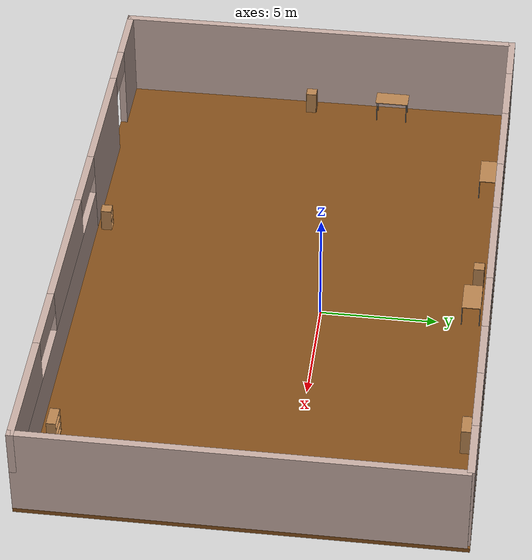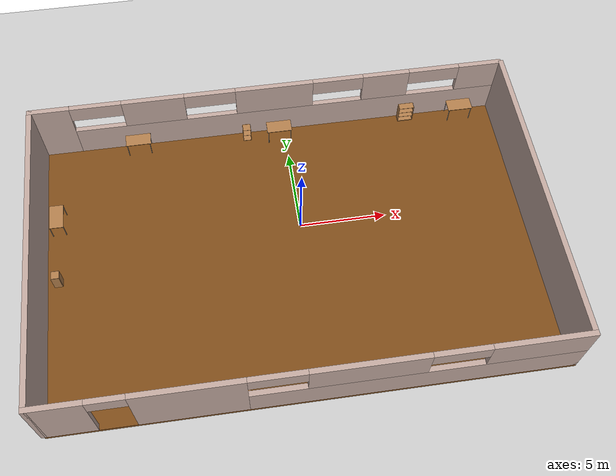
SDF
<sdf version="1.7">
 <world name="default">
  <light name="sun" type="directional">
   <pose>0 0 10 0 -0 0</pose>
   <diffuse>0.8 0.8 0.8 1</diffuse>
   <specular>0.2 0.2 0.2 1</specular>
   <attenuation>
    <range>1000</range>
    <constant>0.9</constant>
    <linear>0.01</linear>
    <quadratic>0.001</quadratic>
   </attenuation>
   <direction>-0.5 0.1 -0.9</direction>
   <spot><inner_angle>0</inner_angle><outer_angle>0</outer_angle><falloff>0</falloff></spot>
  </light>
  <model name="ground_plane">
   <static>1</static>
   <link name="link">
    <collision name="collision">
     <geometry><plane><normal>0 0 1</normal><size>100 100</size></plane></geometry>
     <surface>
      <contact><collide_bitmask>65535</collide_bitmask></contact>
      <friction><ode><mu>100</mu><mu2>50</mu2></ode></friction>
     </surface>
    </collision>
    <visual name="visual">
     <cast_shadows>0</cast_shadows>
     <geometry><plane><normal>0 0 1</normal><size>100 100</size></plane></geometry>
     <material>
      <script><uri>file://media/materials/scripts/gazebo.material</uri><name>Gazebo/Grey</name></script>
     </material>
    </visual>
   </link>
  </model>
  <gravity>0 0 -9.8</gravity>
  <magnetic_field>6e-06 2.3e-05 -4.2e-05</magnetic_field>
  <atmosphere type="adiabatic"/>
  <physics type="ode">
   <max_step_size>0.001</max_step_size>
   <real_time_factor>1</real_time_factor>
   <real_time_update_rate>1000</real_time_update_rate>
  </physics>
  <scene><ambient>0.4 0.4 0.4 1</ambient><background>0.7 0.7 0.7 1</background><shadows>1</shadows></scene>
  <spherical_coordinates>
   <surface_model>EARTH_WGS84</surface_model>
   <latitude_deg>0</latitude_deg>
   <longitude_deg>0</longitude_deg>
   <elevation>0</elevation>
   <heading_deg>0</heading_deg>
  </spherical_coordinates>
  <model name="warehouse_v2">
   <pose>-0.835617 -1.69657 0.21 0 -0 0</pose>
   <link name="Wall_0">
    <pose>-0.075 8.85 0 0 -0 0</pose>
    <visual name="Wall_0_Visual_0">
     <pose>-12.7935 0 2 0 -0 0</pose>
     <geometry><box><size>2.41307 0.3 4</size></box></geometry>
     <material>
      <script><uri>file://media/materials/scripts/gazebo.material</uri><name>Gazebo/Grey</name></script>
      <ambient>0.760784 0.662745 0.627451 1</ambient>
     </material>
     <meta><layer>0</layer></meta>
    </visual>
    <collision name="Wall_0_Collision_0">
     <geometry><box><size>2.41307 0.3 4</size></box></geometry>
     <pose>-12.7935 0 2 0 -0 0</pose>
    </collision>
    <visual name="Wall_0_Visual_1">
     <pose>1.20654 0 1 0 -0 0</pose>
     <geometry><box><size>25.5869 0.3 2</size></box></geometry>
     <material>
      <script><uri>file://media/materials/scripts/gazebo.material</uri><name>Gazebo/Grey</name></script>
      <ambient>0.760784 0.662745 0.627451 1</ambient>
     </material>
     <meta><layer>0</layer></meta>
    </visual>
    <collision name="Wall_0_Collision_1">
     <geometry><box><size>25.5869 0.3 2</size></box></geometry>
     <pose>1.20654 0 1 0 -0 0</pose>
    </collision>
    <visual name="Wall_0_Visual_2">
     <pose>-6.76977 0 3 0 -0 0</pose>
     <geometry><box><size>3.63431 0.3 2</size></box></geometry>
     <material>
      <script><uri>file://media/materials/scripts/gazebo.material</uri><name>Gazebo/Grey</name></script>
      <ambient>0.760784 0.662745 0.627451 1</ambient>
     </material>
     <meta><layer>0</layer></meta>
    </visual>
    <collision name="Wall_0_Collision_2">
     <geometry><box><size>3.63431 0.3 2</size></box></geometry>
     <pose>-6.76977 0 3 0 -0 0</pose>
    </collision>
    <visual name="Wall_0_Visual_3">
     <pose>0.34606 0 3 0 -0 0</pose>
     <geometry><box><size>4.59736 0.3 2</size></box></geometry>
     <material>
      <script><uri>file://media/materials/scripts/gazebo.material</uri><name>Gazebo/Grey</name></script>
      <ambient>0.760784 0.662745 0.627451 1</ambient>
     </material>
     <meta><layer>0</layer></meta>
    </visual>
    <collision name="Wall_0_Collision_3">
     <geometry><box><size>4.59736 0.3 2</size></box></geometry>
     <pose>0.34606 0 3 0 -0 0</pose>
    </collision>
    <visual name="Wall_0_Visual_4">
     <pose>7.03387 0 3 0 -0 0</pose>
     <geometry><box><size>2.77827 0.3 2</size></box></geometry>
     <material>
      <script><uri>file://media/materials/scripts/gazebo.material</uri><name>Gazebo/Grey</name></script>
      <ambient>0.760784 0.662745 0.627451 1</ambient>
     </material>
     <meta><layer>0</layer></meta>
    </visual>
    <collision name="Wall_0_Collision_4">
     <geometry><box><size>2.77827 0.3 2</size></box></geometry>
     <pose>7.03387 0 3 0 -0 0</pose>
    </collision>
    <visual name="Wall_0_Visual_5">
     <pose>12.7115 0 3 0 -0 0</pose>
     <geometry><box><size>2.57699 0.3 2</size></box></geometry>
     <material>
      <script><uri>file://media/materials/scripts/gazebo.material</uri><name>Gazebo/Grey</name></script>
      <ambient>0.760784 0.662745 0.627451 1</ambient>
     </material>
     <meta><layer>0</layer></meta>
    </visual>
    <collision name="Wall_0_Collision_5">
     <geometry><box><size>2.57699 0.3 2</size></box></geometry>
     <pose>12.7115 0 3 0 -0 0</pose>
    </collision>
    <visual name="Wall_0_Visual_6">
     <pose>-10.0869 0 3.5 0 -0 0</pose>
     <geometry><box><size>3 0.3 1</size></box></geometry>
     <material>
      <script><uri>file://media/materials/scripts/gazebo.material</uri><name>Gazebo/Grey</name></script>
      <ambient>0.760784 0.662745 0.627451 1</ambient>
     </material>
     <meta><layer>0</layer></meta>
    </visual>
    <collision name="Wall_0_Collision_6">
     <geometry><box><size>3 0.3 1</size></box></geometry>
     <pose>-10.0869 0 3.5 0 -0 0</pose>
    </collision>
    <visual name="Wall_0_Visual_7">
     <pose>-3.45262 0 3.5 0 -0 0</pose>
     <geometry><box><size>3 0.3 1</size></box></geometry>
     <material>
      <script><uri>file://media/materials/scripts/gazebo.material</uri><name>Gazebo/Grey</name></script>
      <ambient>0.760784 0.662745 0.627451 1</ambient>
     </material>
     <meta><layer>0</layer></meta>
    </visual>
    <collision name="Wall_0_Collision_7">
     <geometry><box><size>3 0.3 1</size></box></geometry>
     <pose>-3.45262 0 3.5 0 -0 0</pose>
    </collision>
    <visual name="Wall_0_Visual_8">
     <pose>4.14474 0 3.5 0 -0 0</pose>
     <geometry><box><size>3 0.3 1</size></box></geometry>
     <material>
      <script><uri>file://media/materials/scripts/gazebo.material</uri><name>Gazebo/Grey</name></script>
      <ambient>0.760784 0.662745 0.627451 1</ambient>
     </material>
     <meta><layer>0</layer></meta>
    </visual>
    <collision name="Wall_0_Collision_8">
     <geometry><box><size>3 0.3 1</size></box></geometry>
     <pose>4.14474 0 3.5 0 -0 0</pose>
    </collision>
    <visual name="Wall_0_Visual_9">
     <pose>9.92301 0 3.5 0 -0 0</pose>
     <geometry><box><size>3 0.3 1</size></box></geometry>
     <material>
      <script><uri>file://media/materials/scripts/gazebo.material</uri><name>Gazebo/Grey</name></script>
      <ambient>0.760784 0.662745 0.627451 1</ambient>
     </material>
     <meta><layer>0</layer></meta>
    </visual>
    <collision name="Wall_0_Collision_9">
     <geometry><box><size>3 0.3 1</size></box></geometry>
     <pose>9.92301 0 3.5 0 -0 0</pose>
    </collision>
   </link>
   <link name="Wall_4">
    <collision name="Wall_4_Collision">
     <geometry><box><size>18 0.3 4</size></box></geometry>
     <pose>0 0 2 0 -0 0</pose>
    </collision>
    <visual name="Wall_4_Visual">
     <pose>0 0 2 0 -0 0</pose>
     <geometry><box><size>18 0.3 4</size></box></geometry>
     <material>
      <script><uri>file://media/materials/scripts/gazebo.material</uri><name>Gazebo/Grey</name></script>
      <ambient>0.760784 0.662745 0.627451 1</ambient>
     </material>
     <meta><layer>0</layer></meta>
    </visual>
    <pose>-13.925 0 0 0 -0 -1.5708</pose>
   </link>
   <link name="Wall_6">
    <pose>0 -8.85 0 0 -0 0</pose>
    <visual name="Wall_6_Visual_0">
     <pose>-12.6069 0 2 0 -0 0</pose>
     <geometry><box><size>2.9362 0.3 4</size></box></geometry>
     <material>
      <script><uri>file://media/materials/scripts/gazebo.material</uri><name>Gazebo/Grey</name></script>
      <ambient>0.760784 0.662745 0.627451 1</ambient>
     </material>
     <meta><layer>0</layer></meta>
    </visual>
    <collision name="Wall_6_Collision_0">
     <geometry><box><size>2.9362 0.3 4</size></box></geometry>
     <pose>-12.6069 0 2 0 -0 0</pose>
    </collision>
    <visual name="Wall_6_Visual_1">
     <pose>-6.25392 0 2 0 -0 0</pose>
     <geometry><box><size>5.76976 0.3 4</size></box></geometry>
     <material>
      <script><uri>file://media/materials/scripts/gazebo.material</uri><name>Gazebo/Grey</name></script>
      <ambient>0.760784 0.662745 0.627451 1</ambient>
     </material>
     <meta><layer>0</layer></meta>
    </visual>
    <collision name="Wall_6_Collision_1">
     <geometry><box><size>5.76976 0.3 4</size></box></geometry>
     <pose>-6.25392 0 2 0 -0 0</pose>
    </collision>
    <visual name="Wall_6_Visual_2">
     <pose>5.35298 0 1 0 -0 0</pose>
     <geometry><box><size>17.444 0.3 2</size></box></geometry>
     <material>
      <script><uri>file://media/materials/scripts/gazebo.material</uri><name>Gazebo/Grey</name></script>
      <ambient>0.760784 0.662745 0.627451 1</ambient>
     </material>
     <meta><layer>0</layer></meta>
    </visual>
    <collision name="Wall_6_Collision_2">
     <geometry><box><size>17.444 0.3 2</size></box></geometry>
     <pose>5.35298 0 1 0 -0 0</pose>
    </collision>
    <visual name="Wall_6_Visual_3">
     <pose>2.69024 0 3 0 -0 0</pose>
     <geometry><box><size>6.11855 0.3 2</size></box></geometry>
     <material>
      <script><uri>file://media/materials/scripts/gazebo.material</uri><name>Gazebo/Grey</name></script>
      <ambient>0.760784 0.662745 0.627451 1</ambient>
     </material>
     <meta><layer>0</layer></meta>
    </visual>
    <collision name="Wall_6_Collision_3">
     <geometry><box><size>6.11855 0.3 2</size></box></geometry>
     <pose>2.69024 0 3 0 -0 0</pose>
    </collision>
    <visual name="Wall_6_Visual_4">
     <pose>11.4123 0 3 0 -0 0</pose>
     <geometry><box><size>5.32548 0.3 2</size></box></geometry>
     <material>
      <script><uri>file://media/materials/scripts/gazebo.material</uri><name>Gazebo/Grey</name></script>
      <ambient>0.760784 0.662745 0.627451 1</ambient>
     </material>
     <meta><layer>0</layer></meta>
    </visual>
    <collision name="Wall_6_Collision_4">
     <geometry><box><size>5.32548 0.3 2</size></box></geometry>
     <pose>11.4123 0 3 0 -0 0</pose>
    </collision>
    <visual name="Wall_6_Visual_5">
     <pose>-10.1388 0 3.5 0 -0 0</pose>
     <geometry><box><size>2 0.3 1</size></box></geometry>
     <material>
      <script><uri>file://media/materials/scripts/gazebo.material</uri><name>Gazebo/Grey</name></script>
      <ambient>0.760784 0.662745 0.627451 1</ambient>
     </material>
     <meta><layer>0</layer></meta>
    </visual>
    <collision name="Wall_6_Collision_5">
     <geometry><box><size>2 0.3 1</size></box></geometry>
     <pose>-10.1388 0 3.5 0 -0 0</pose>
    </collision>
    <visual name="Wall_6_Visual_6">
     <pose>-1.86904 0 3.5 0 -0 0</pose>
     <geometry><box><size>3 0.3 1</size></box></geometry>
     <material>
      <script><uri>file://media/materials/scripts/gazebo.material</uri><name>Gazebo/Grey</name></script>
      <ambient>0.760784 0.662745 0.627451 1</ambient>
     </material>
     <meta><layer>0</layer></meta>
    </visual>
    <collision name="Wall_6_Collision_6">
     <geometry><box><size>3 0.3 1</size></box></geometry>
     <pose>-1.86904 0 3.5 0 -0 0</pose>
    </collision>
    <visual name="Wall_6_Visual_7">
     <pose>7.24951 0 3.5 0 -0 0</pose>
     <geometry><box><size>3 0.3 1</size></box></geometry>
     <material>
      <script><uri>file://media/materials/scripts/gazebo.material</uri><name>Gazebo/Grey</name></script>
      <ambient>0.760784 0.662745 0.627451 1</ambient>
     </material>
     <meta><layer>0</layer></meta>
    </visual>
    <collision name="Wall_6_Collision_7">
     <geometry><box><size>3 0.3 1</size></box></geometry>
     <pose>7.24951 0 3.5 0 -0 0</pose>
    </collision>
   </link>
   <link name="Wall_8">
    <collision name="Wall_8_Collision">
     <geometry><box><size>17.9 0.3 4</size></box></geometry>
     <pose>0 0 2 0 -0 0</pose>
    </collision>
    <visual name="Wall_8_Visual">
     <pose>0 0 2 0 -0 0</pose>
     <geometry><box><size>17.9 0.3 4</size></box></geometry>
     <material>
      <script><uri>file://media/materials/scripts/gazebo.material</uri><name>Gazebo/Grey</name></script>
      <ambient>0.760784 0.662745 0.627451 1</ambient>
     </material>
     <meta><layer>0</layer></meta>
    </visual>
    <pose>13.925 -0.05 0 0 -0 1.5708</pose>
   </link>
   <static>1</static>
  </model>
  <model name="table">
   <static>1</static>
   <link name="link">
    <collision name="surface">
     <pose>0 0 1 0 -0 0</pose>
     <geometry><box><size>1.5 0.8 0.03</size></box></geometry>
     <surface><friction><ode><mu>0.6</mu><mu2>0.6</mu2></ode></friction></surface>
    </collision>
    <visual name="visual1">
     <pose>0 0 1 0 -0 0</pose>
     <geometry><box><size>1.5 0.8 0.03</size></box></geometry>
     <material>
      <script><uri>file://media/materials/scripts/gazebo.material</uri><name>Gazebo/Wood</name></script>
     </material>
    </visual>
    <collision name="front_left_leg">
     <pose>0.68 0.38 0.5 0 -0 0</pose>
     <geometry><cylinder><radius>0.02</radius><length>1</length></cylinder></geometry>
    </collision>
    <visual name="front_left_leg">
     <pose>0.68 0.38 0.5 0 -0 0</pose>
     <geometry><cylinder><radius>0.02</radius><length>1</length></cylinder></geometry>
     <material>
      <script><uri>file://media/materials/scripts/gazebo.material</uri><name>Gazebo/Grey</name></script>
     </material>
    </visual>
    <collision name="front_right_leg">
     <pose>0.68 -0.38 0.5 0 -0 0</pose>
     <geometry><cylinder><radius>0.02</radius><length>1</length></cylinder></geometry>
    </collision>
    <visual name="front_right_leg">
     <pose>0.68 -0.38 0.5 0 -0 0</pose>
     <geometry><cylinder><radius>0.02</radius><length>1</length></cylinder></geometry>
     <material>
      <script><uri>file://media/materials/scripts/gazebo.material</uri><name>Gazebo/Grey</name></script>
     </material>
    </visual>
    <collision name="back_right_leg">
     <pose>-0.68 -0.38 0.5 0 -0 0</pose>
     <geometry><cylinder><radius>0.02</radius><length>1</length></cylinder></geometry>
    </collision>
    <visual name="back_right_leg">
     <pose>-0.68 -0.38 0.5 0 -0 0</pose>
     <geometry><cylinder><radius>0.02</radius><length>1</length></cylinder></geometry>
     <material>
      <script><uri>file://media/materials/scripts/gazebo.material</uri><name>Gazebo/Grey</name></script>
     </material>
    </visual>
    <collision name="back_left_leg">
     <pose>-0.68 0.38 0.5 0 -0 0</pose>
     <geometry><cylinder><radius>0.02</radius><length>1</length></cylinder></geometry>
    </collision>
    <visual name="back_left_leg">
     <pose>-0.68 0.38 0.5 0 -0 0</pose>
     <geometry><cylinder><radius>0.02</radius><length>1</length></cylinder></geometry>
     <material>
      <script><uri>file://media/materials/scripts/gazebo.material</uri><name>Gazebo/Grey</name></script>
     </material>
    </visual>
   </link>
   <pose>10.9163 6.54657 0.240059 0 -0 0</pose>
  </model>
  <model name="table_0">
   <static>1</static>
   <link name="link">
    <collision name="surface">
     <pose>0 0 1 0 -0 0</pose>
     <geometry><box><size>1.5 0.8 0.03</size></box></geometry>
     <surface><friction><ode><mu>0.6</mu><mu2>0.6</mu2></ode></friction></surface>
    </collision>
    <visual name="visual1">
     <pose>0 0 1 0 -0 0</pose>
     <geometry><box><size>1.5 0.8 0.03</size></box></geometry>
     <material>
      <script><uri>file://media/materials/scripts/gazebo.material</uri><name>Gazebo/Wood</name></script>
     </material>
    </visual>
    <collision name="front_left_leg">
     <pose>0.68 0.38 0.5 0 -0 0</pose>
     <geometry><cylinder><radius>0.02</radius><length>1</length></cylinder></geometry>
    </collision>
    <visual name="front_left_leg">
     <pose>0.68 0.38 0.5 0 -0 0</pose>
     <geometry><cylinder><radius>0.02</radius><length>1</length></cylinder></geometry>
     <material>
      <script><uri>file://media/materials/scripts/gazebo.material</uri><name>Gazebo/Grey</name></script>
     </material>
    </visual>
    <collision name="front_right_leg">
     <pose>0.68 -0.38 0.5 0 -0 0</pose>
     <geometry><cylinder><radius>0.02</radius><length>1</length></cylinder></geometry>
    </collision>
    <visual name="front_right_leg">
     <pose>0.68 -0.38 0.5 0 -0 0</pose>
     <geometry><cylinder><radius>0.02</radius><length>1</length></cylinder></geometry>
     <material>
      <script><uri>file://media/materials/scripts/gazebo.material</uri><name>Gazebo/Grey</name></script>
     </material>
    </visual>
    <collision name="back_right_leg">
     <pose>-0.68 -0.38 0.5 0 -0 0</pose>
     <geometry><cylinder><radius>0.02</radius><length>1</length></cylinder></geometry>
    </collision>
    <visual name="back_right_leg">
     <pose>-0.68 -0.38 0.5 0 -0 0</pose>
     <geometry><cylinder><radius>0.02</radius><length>1</length></cylinder></geometry>
     <material>
      <script><uri>file://media/materials/scripts/gazebo.material</uri><name>Gazebo/Grey</name></script>
     </material>
    </visual>
    <collision name="back_left_leg">
     <pose>-0.68 0.38 0.5 0 -0 0</pose>
     <geometry><cylinder><radius>0.02</radius><length>1</length></cylinder></geometry>
    </collision>
    <visual name="back_left_leg">
     <pose>-0.68 0.38 0.5 0 -0 0</pose>
     <geometry><cylinder><radius>0.02</radius><length>1</length></cylinder></geometry>
     <material>
      <script><uri>file://media/materials/scripts/gazebo.material</uri><name>Gazebo/Grey</name></script>
     </material>
    </visual>
   </link>
   <pose>-0.401974 6.43963 0.229068 0 -0 0</pose>
  </model>
  <model name="table_1">
   <static>1</static>
   <link name="link">
    <collision name="surface">
     <pose>0 0 1 0 -0 0</pose>
     <geometry><box><size>1.5 0.8 0.03</size></box></geometry>
     <surface><friction><ode><mu>0.6</mu><mu2>0.6</mu2></ode></friction></surface>
    </collision>
    <visual name="visual1">
     <pose>0 0 1 0 -0 0</pose>
     <geometry><box><size>1.5 0.8 0.03</size></box></geometry>
     <material>
      <script><uri>file://media/materials/scripts/gazebo.material</uri><name>Gazebo/Wood</name></script>
     </material>
    </visual>
    <collision name="front_left_leg">
     <pose>0.68 0.38 0.5 0 -0 0</pose>
     <geometry><cylinder><radius>0.02</radius><length>1</length></cylinder></geometry>
    </collision>
    <visual name="front_left_leg">
     <pose>0.68 0.38 0.5 0 -0 0</pose>
     <geometry><cylinder><radius>0.02</radius><length>1</length></cylinder></geometry>
     <material>
      <script><uri>file://media/materials/scripts/gazebo.material</uri><name>Gazebo/Grey</name></script>
     </material>
    </visual>
    <collision name="front_right_leg">
     <pose>0.68 -0.38 0.5 0 -0 0</pose>
     <geometry><cylinder><radius>0.02</radius><length>1</length></cylinder></geometry>
    </collision>
    <visual name="front_right_leg">
     <pose>0.68 -0.38 0.5 0 -0 0</pose>
     <geometry><cylinder><radius>0.02</radius><length>1</length></cylinder></geometry>
     <material>
      <script><uri>file://media/materials/scripts/gazebo.material</uri><name>Gazebo/Grey</name></script>
     </material>
    </visual>
    <collision name="back_right_leg">
     <pose>-0.68 -0.38 0.5 0 -0 0</pose>
     <geometry><cylinder><radius>0.02</radius><length>1</length></cylinder></geometry>
    </collision>
    <visual name="back_right_leg">
     <pose>-0.68 -0.38 0.5 0 -0 0</pose>
     <geometry><cylinder><radius>0.02</radius><length>1</length></cylinder></geometry>
     <material>
      <script><uri>file://media/materials/scripts/gazebo.material</uri><name>Gazebo/Grey</name></script>
     </material>
    </visual>
    <collision name="back_left_leg">
     <pose>-0.68 0.38 0.5 0 -0 0</pose>
     <geometry><cylinder><radius>0.02</radius><length>1</length></cylinder></geometry>
    </collision>
    <visual name="back_left_leg">
     <pose>-0.68 0.38 0.5 0 -0 0</pose>
     <geometry><cylinder><radius>0.02</radius><length>1</length></cylinder></geometry>
     <material>
      <script><uri>file://media/materials/scripts/gazebo.material</uri><name>Gazebo/Grey</name></script>
     </material>
    </visual>
   </link>
   <pose>-8.98707 6.61932 0.248796 0 -0 0</pose>
  </model>
  <model name="table_2">
   <static>1</static>
   <link name="link">
    <collision name="surface">
     <pose>0 0 1 0 -0 0</pose>
     <geometry><box><size>1.5 0.8 0.03</size></box></geometry>
     <surface><friction><ode><mu>0.6</mu><mu2>0.6</mu2></ode></friction></surface>
    </collision>
    <visual name="visual1">
     <pose>0 0 1 0 -0 0</pose>
     <geometry><box><size>1.5 0.8 0.03</size></box></geometry>
     <material>
      <script><uri>file://media/materials/scripts/gazebo.material</uri><name>Gazebo/Wood</name></script>
     </material>
    </visual>
    <collision name="front_left_leg">
     <pose>0.68 0.38 0.5 0 -0 0</pose>
     <geometry><cylinder><radius>0.02</radius><length>1</length></cylinder></geometry>
    </collision>
    <visual name="front_left_leg">
     <pose>0.68 0.38 0.5 0 -0 0</pose>
     <geometry><cylinder><radius>0.02</radius><length>1</length></cylinder></geometry>
     <material>
      <script><uri>file://media/materials/scripts/gazebo.material</uri><name>Gazebo/Grey</name></script>
     </material>
    </visual>
    <collision name="front_right_leg">
     <pose>0.68 -0.38 0.5 0 -0 0</pose>
     <geometry><cylinder><radius>0.02</radius><length>1</length></cylinder></geometry>
    </collision>
    <visual name="front_right_leg">
     <pose>0.68 -0.38 0.5 0 -0 0</pose>
     <geometry><cylinder><radius>0.02</radius><length>1</length></cylinder></geometry>
     <material>
      <script><uri>file://media/materials/scripts/gazebo.material</uri><name>Gazebo/Grey</name></script>
     </material>
    </visual>
    <collision name="back_right_leg">
     <pose>-0.68 -0.38 0.5 0 -0 0</pose>
     <geometry><cylinder><radius>0.02</radius><length>1</length></cylinder></geometry>
    </collision>
    <visual name="back_right_leg">
     <pose>-0.68 -0.38 0.5 0 -0 0</pose>
     <geometry><cylinder><radius>0.02</radius><length>1</length></cylinder></geometry>
     <material>
      <script><uri>file://media/materials/scripts/gazebo.material</uri><name>Gazebo/Grey</name></script>
     </material>
    </visual>
    <collision name="back_left_leg">
     <pose>-0.68 0.38 0.5 0 -0 0</pose>
     <geometry><cylinder><radius>0.02</radius><length>1</length></cylinder></geometry>
    </collision>
    <visual name="back_left_leg">
     <pose>-0.68 0.38 0.5 0 -0 0</pose>
     <geometry><cylinder><radius>0.02</radius><length>1</length></cylinder></geometry>
     <material>
      <script><uri>file://media/materials/scripts/gazebo.material</uri><name>Gazebo/Grey</name></script>
     </material>
    </visual>
   </link>
   <pose>-13.9182 1.81113 0.223815 0 -0 1.56095</pose>
  </model>
  <model name="cabinet">
   <static>1</static>
   <link name="cabinet_bottom_plate">
    <inertial>
     <pose>0 0 -1 0 -0 0</pose>
     <inertia><ixx>2.05</ixx><ixy>0</ixy><ixz>0</ixz><iyy>2.05</iyy><iyz>0</iyz><izz>2.05</izz></inertia>
     <mass>25</mass>
    </inertial>
    <collision name="cabinet_bottom_plate_geom">
     <pose>0 0 0.01 0 -0 0</pose>
     <geometry><box><size>0.45 0.45 0.02</size></box></geometry>
    </collision>
    <visual name="cabinet_bottom_plate_geom_visual">
     <pose>0 0 0.01 0 -0 0</pose>
     <geometry><box><size>0.45 0.45 0.02</size></box></geometry>
     <material>
      <script><uri>file://media/materials/scripts/gazebo.material</uri><name>Gazebo/Wood</name></script>
     </material>
    </visual>
    <collision name="cabinet_bottom_plate_geom_cabinet_back_plate">
     <pose>0.235 0 0.51 0 -0 0</pose>
     <geometry><box><size>0.02 0.45 1.02</size></box></geometry>
    </collision>
    <visual name="cabinet_bottom_plate_geom_cabinet_back_plate_visual">
     <pose>0.235 0 0.51 0 -0 0</pose>
     <geometry><box><size>0.02 0.45 1.02</size></box></geometry>
     <material>
      <script><uri>file://media/materials/scripts/gazebo.material</uri><name>Gazebo/Wood</name></script>
     </material>
    </visual>
    <collision name="cabinet_bottom_plate_geom_cabinet_left_plate">
     <pose>0 0.235 0.51 0 -0 0</pose>
     <geometry><box><size>0.45 0.02 1.02</size></box></geometry>
    </collision>
    <visual name="cabinet_bottom_plate_geom_cabinet_left_plate_visual">
     <pose>0 0.235 0.51 0 -0 0</pose>
     <geometry><box><size>0.45 0.02 1.02</size></box></geometry>
     <material>
      <script><uri>file://media/materials/scripts/gazebo.material</uri><name>Gazebo/Wood</name></script>
     </material>
    </visual>
    <collision name="cabinet_bottom_plate_geom_cabinet_middle_plate">
     <pose>0 0 0.51 0 -0 0</pose>
     <geometry><box><size>0.45 0.45 0.02</size></box></geometry>
    </collision>
    <visual name="cabinet_bottom_plate_geom_cabinet_middle_plate_visual">
     <pose>0 0 0.51 0 -0 0</pose>
     <geometry><box><size>0.45 0.45 0.02</size></box></geometry>
     <material>
      <script><uri>file://media/materials/scripts/gazebo.material</uri><name>Gazebo/Wood</name></script>
     </material>
    </visual>
    <collision name="cabinet_bottom_plate_geom_cabinet_right_plate">
     <pose>0 -0.235 0.51 0 -0 0</pose>
     <geometry><box><size>0.45 0.02 1.02</size></box></geometry>
    </collision>
    <visual name="cabinet_bottom_plate_geom_cabinet_right_plate_visual">
     <pose>0 -0.235 0.51 0 -0 0</pose>
     <geometry><box><size>0.45 0.02 1.02</size></box></geometry>
     <material>
      <script><uri>file://media/materials/scripts/gazebo.material</uri><name>Gazebo/Wood</name></script>
     </material>
    </visual>
    <collision name="cabinet_bottom_plate_geom_cabinet_top_plate">
     <pose>0 0 1.01 0 -0 0</pose>
     <geometry><box><size>0.45 0.45 0.02</size></box></geometry>
    </collision>
    <visual name="cabinet_bottom_plate_geom_cabinet_top_plate_visual">
     <pose>0 0 1.01 0 -0 0</pose>
     <geometry><box><size>0.45 0.45 0.02</size></box></geometry>
     <material>
      <script><uri>file://media/materials/scripts/gazebo.material</uri><name>Gazebo/Wood</name></script>
     </material>
    </visual>
   </link>
   <pose>-14.002 -1.97237 0.231283 0 -0 0</pose>
  </model>
  <model name="cabinet_0">
   <static>1</static>
   <link name="cabinet_bottom_plate">
    <inertial>
     <pose>0 0 -1 0 -0 0</pose>
     <inertia><ixx>2.05</ixx><ixy>0</ixy><ixz>0</ixz><iyy>2.05</iyy><iyz>0</iyz><izz>2.05</izz></inertia>
     <mass>25</mass>
    </inertial>
    <collision name="cabinet_bottom_plate_geom">
     <pose>0 0 0.01 0 -0 0</pose>
     <geometry><box><size>0.45 0.45 0.02</size></box></geometry>
    </collision>
    <visual name="cabinet_bottom_plate_geom_visual">
     <pose>0 0 0.01 0 -0 0</pose>
     <geometry><box><size>0.45 0.45 0.02</size></box></geometry>
     <material>
      <script><uri>file://media/materials/scripts/gazebo.material</uri><name>Gazebo/Wood</name></script>
     </material>
    </visual>
    <collision name="cabinet_bottom_plate_geom_cabinet_back_plate">
     <pose>0.235 0 0.51 0 -0 0</pose>
     <geometry><box><size>0.02 0.45 1.02</size></box></geometry>
    </collision>
    <visual name="cabinet_bottom_plate_geom_cabinet_back_plate_visual">
     <pose>0.235 0 0.51 0 -0 0</pose>
     <geometry><box><size>0.02 0.45 1.02</size></box></geometry>
     <material>
      <script><uri>file://media/materials/scripts/gazebo.material</uri><name>Gazebo/Wood</name></script>
     </material>
    </visual>
    <collision name="cabinet_bottom_plate_geom_cabinet_left_plate">
     <pose>0 0.235 0.51 0 -0 0</pose>
     <geometry><box><size>0.45 0.02 1.02</size></box></geometry>
    </collision>
    <visual name="cabinet_bottom_plate_geom_cabinet_left_plate_visual">
     <pose>0 0.235 0.51 0 -0 0</pose>
     <geometry><box><size>0.45 0.02 1.02</size></box></geometry>
     <material>
      <script><uri>file://media/materials/scripts/gazebo.material</uri><name>Gazebo/Wood</name></script>
     </material>
    </visual>
    <collision name="cabinet_bottom_plate_geom_cabinet_middle_plate">
     <pose>0 0 0.51 0 -0 0</pose>
     <geometry><box><size>0.45 0.45 0.02</size></box></geometry>
    </collision>
    <visual name="cabinet_bottom_plate_geom_cabinet_middle_plate_visual">
     <pose>0 0 0.51 0 -0 0</pose>
     <geometry><box><size>0.45 0.45 0.02</size></box></geometry>
     <material>
      <script><uri>file://media/materials/scripts/gazebo.material</uri><name>Gazebo/Wood</name></script>
     </material>
    </visual>
    <collision name="cabinet_bottom_plate_geom_cabinet_right_plate">
     <pose>0 -0.235 0.51 0 -0 0</pose>
     <geometry><box><size>0.45 0.02 1.02</size></box></geometry>
    </collision>
    <visual name="cabinet_bottom_plate_geom_cabinet_right_plate_visual">
     <pose>0 -0.235 0.51 0 -0 0</pose>
     <geometry><box><size>0.45 0.02 1.02</size></box></geometry>
     <material>
      <script><uri>file://media/materials/scripts/gazebo.material</uri><name>Gazebo/Wood</name></script>
     </material>
    </visual>
    <collision name="cabinet_bottom_plate_geom_cabinet_top_plate">
     <pose>0 0 1.01 0 -0 0</pose>
     <geometry><box><size>0.45 0.45 0.02</size></box></geometry>
    </collision>
    <visual name="cabinet_bottom_plate_geom_cabinet_top_plate_visual">
     <pose>0 0 1.01 0 -0 0</pose>
     <geometry><box><size>0.45 0.45 0.02</size></box></geometry>
     <material>
      <script><uri>file://media/materials/scripts/gazebo.material</uri><name>Gazebo/Wood</name></script>
     </material>
    </visual>
   </link>
   <pose>-4.30128 -9.97434 0.266905 0 0 -1.5592</pose>
  </model>
  <model name="cabinet_1">
   <static>1</static>
   <link name="cabinet_bottom_plate">
    <inertial>
     <pose>0 0 -1 0 -0 0</pose>
     <inertia><ixx>2.05</ixx><ixy>0</ixy><ixz>0</ixz><iyy>2.05</iyy><iyz>0</iyz><izz>2.05</izz></inertia>
     <mass>25</mass>
    </inertial>
    <collision name="cabinet_bottom_plate_geom">
     <pose>0 0 0.01 0 -0 0</pose>
     <geometry><box><size>0.45 0.45 0.02</size></box></geometry>
    </collision>
    <visual name="cabinet_bottom_plate_geom_visual">
     <pose>0 0 0.01 0 -0 0</pose>
     <geometry><box><size>0.45 0.45 0.02</size></box></geometry>
     <material>
      <script><uri>file://media/materials/scripts/gazebo.material</uri><name>Gazebo/Wood</name></script>
     </material>
    </visual>
    <collision name="cabinet_bottom_plate_geom_cabinet_back_plate">
     <pose>0.235 0 0.51 0 -0 0</pose>
     <geometry><box><size>0.02 0.45 1.02</size></box></geometry>
    </collision>
    <visual name="cabinet_bottom_plate_geom_cabinet_back_plate_visual">
     <pose>0.235 0 0.51 0 -0 0</pose>
     <geometry><box><size>0.02 0.45 1.02</size></box></geometry>
     <material>
      <script><uri>file://media/materials/scripts/gazebo.material</uri><name>Gazebo/Wood</name></script>
     </material>
    </visual>
    <collision name="cabinet_bottom_plate_geom_cabinet_left_plate">
     <pose>0 0.235 0.51 0 -0 0</pose>
     <geometry><box><size>0.45 0.02 1.02</size></box></geometry>
    </collision>
    <visual name="cabinet_bottom_plate_geom_cabinet_left_plate_visual">
     <pose>0 0.235 0.51 0 -0 0</pose>
     <geometry><box><size>0.45 0.02 1.02</size></box></geometry>
     <material>
      <script><uri>file://media/materials/scripts/gazebo.material</uri><name>Gazebo/Wood</name></script>
     </material>
    </visual>
    <collision name="cabinet_bottom_plate_geom_cabinet_middle_plate">
     <pose>0 0 0.51 0 -0 0</pose>
     <geometry><box><size>0.45 0.45 0.02</size></box></geometry>
    </collision>
    <visual name="cabinet_bottom_plate_geom_cabinet_middle_plate_visual">
     <pose>0 0 0.51 0 -0 0</pose>
     <geometry><box><size>0.45 0.45 0.02</size></box></geometry>
     <material>
      <script><uri>file://media/materials/scripts/gazebo.material</uri><name>Gazebo/Wood</name></script>
     </material>
    </visual>
    <collision name="cabinet_bottom_plate_geom_cabinet_right_plate">
     <pose>0 -0.235 0.51 0 -0 0</pose>
     <geometry><box><size>0.45 0.02 1.02</size></box></geometry>
    </collision>
    <visual name="cabinet_bottom_plate_geom_cabinet_right_plate_visual">
     <pose>0 -0.235 0.51 0 -0 0</pose>
     <geometry><box><size>0.45 0.02 1.02</size></box></geometry>
     <material>
      <script><uri>file://media/materials/scripts/gazebo.material</uri><name>Gazebo/Wood</name></script>
     </material>
    </visual>
    <collision name="cabinet_bottom_plate_geom_cabinet_top_plate">
     <pose>0 0 1.01 0 -0 0</pose>
     <geometry><box><size>0.45 0.45 0.02</size></box></geometry>
    </collision>
    <visual name="cabinet_bottom_plate_geom_cabinet_top_plate_visual">
     <pose>0 0 1.01 0 -0 0</pose>
     <geometry><box><size>0.45 0.45 0.02</size></box></geometry>
     <material>
      <script><uri>file://media/materials/scripts/gazebo.material</uri><name>Gazebo/Wood</name></script>
     </material>
    </visual>
   </link>
   <pose>-2.38121 6.59818 0.252655 0 -0 1.56011</pose>
  </model>
  <model name="bookshelf">
   <static>1</static>
   <link name="link">
    <inertial><mass>1</mass></inertial>
    <collision name="back">
     <pose>0 0.005 0.6 0 -0 0</pose>
     <geometry><box><size>0.9 0.01 1.2</size></box></geometry>
    </collision>
    <visual name="visual1">
     <pose>0 0.005 0.6 0 -0 0</pose>
     <geometry><box><size>0.9 0.01 1.2</size></box></geometry>
     <material>
      <script><uri>file://media/materials/scripts/gazebo.material</uri><name>Gazebo/Wood</name></script>
     </material>
    </visual>
    <collision name="left_side">
     <pose>0.45 -0.195 0.6 0 -0 0</pose>
     <geometry><box><size>0.02 0.4 1.2</size></box></geometry>
    </collision>
    <visual name="visual2">
     <pose>0.45 -0.195 0.6 0 -0 0</pose>
     <geometry><box><size>0.02 0.4 1.2</size></box></geometry>
     <material>
      <script><uri>file://media/materials/scripts/gazebo.material</uri><name>Gazebo/Wood</name></script>
     </material>
    </visual>
    <collision name="right_side">
     <pose>-0.45 -0.195 0.6 0 -0 0</pose>
     <geometry><box><size>0.02 0.4 1.2</size></box></geometry>
    </collision>
    <visual name="visual3">
     <pose>-0.45 -0.195 0.6 0 -0 0</pose>
     <geometry><box><size>0.02 0.4 1.2</size></box></geometry>
     <material>
      <script><uri>file://media/materials/scripts/gazebo.material</uri><name>Gazebo/Wood</name></script>
     </material>
    </visual>
    <collision name="bottom">
     <pose>0 -0.195 0.03 0 -0 0</pose>
     <geometry><box><size>0.88 0.4 0.06</size></box></geometry>
    </collision>
    <visual name="visual4">
     <pose>0 -0.195 0.03 0 -0 0</pose>
     <geometry><box><size>0.88 0.4 0.06</size></box></geometry>
     <material>
      <script><uri>file://media/materials/scripts/gazebo.material</uri><name>Gazebo/Wood</name></script>
     </material>
    </visual>
    <collision name="top">
     <pose>0 -0.195 1.19 0 -0 0</pose>
     <geometry><box><size>0.88 0.4 0.02</size></box></geometry>
    </collision>
    <visual name="visual5">
     <pose>0 -0.195 1.19 0 -0 0</pose>
     <geometry><box><size>0.88 0.4 0.02</size></box></geometry>
     <material>
      <script><uri>file://media/materials/scripts/gazebo.material</uri><name>Gazebo/Wood</name></script>
     </material>
    </visual>
    <collision name="low_shelf">
     <pose>0 -0.195 0.43 0 -0 0</pose>
     <geometry><box><size>0.88 0.4 0.02</size></box></geometry>
    </collision>
    <visual name="visual6">
     <pose>0 -0.195 0.43 0 -0 0</pose>
     <geometry><box><size>0.88 0.4 0.02</size></box></geometry>
     <material>
      <script><uri>file://media/materials/scripts/gazebo.material</uri><name>Gazebo/Wood</name></script>
     </material>
    </visual>
    <collision name="high_shelf">
     <pose>0 -0.195 0.8 0 -0 0</pose>
     <geometry><box><size>0.88 0.4 0.02</size></box></geometry>
    </collision>
    <visual name="visual7">
     <pose>0 -0.195 0.8 0 -0 0</pose>
     <geometry><box><size>0.88 0.4 0.02</size></box></geometry>
     <material>
      <script><uri>file://media/materials/scripts/gazebo.material</uri><name>Gazebo/Wood</name></script>
     </material>
    </visual>
   </link>
   <pose>7.59244 6.93476 0.233485 0 -0 0</pose>
  </model>
  <model name="bookshelf_0">
   <static>1</static>
   <link name="link">
    <inertial><mass>1</mass></inertial>
    <collision name="back">
     <pose>0 0.005 0.6 0 -0 0</pose>
     <geometry><box><size>0.9 0.01 1.2</size></box></geometry>
    </collision>
    <visual name="visual1">
     <pose>0 0.005 0.6 0 -0 0</pose>
     <geometry><box><size>0.9 0.01 1.2</size></box></geometry>
     <material>
      <script><uri>file://media/materials/scripts/gazebo.material</uri><name>Gazebo/Wood</name></script>
     </material>
    </visual>
    <collision name="left_side">
     <pose>0.45 -0.195 0.6 0 -0 0</pose>
     <geometry><box><size>0.02 0.4 1.2</size></box></geometry>
    </collision>
    <visual name="visual2">
     <pose>0.45 -0.195 0.6 0 -0 0</pose>
     <geometry><box><size>0.02 0.4 1.2</size></box></geometry>
     <material>
      <script><uri>file://media/materials/scripts/gazebo.material</uri><name>Gazebo/Wood</name></script>
     </material>
    </visual>
    <collision name="right_side">
     <pose>-0.45 -0.195 0.6 0 -0 0</pose>
     <geometry><box><size>0.02 0.4 1.2</size></box></geometry>
    </collision>
    <visual name="visual3">
     <pose>-0.45 -0.195 0.6 0 -0 0</pose>
     <geometry><box><size>0.02 0.4 1.2</size></box></geometry>
     <material>
      <script><uri>file://media/materials/scripts/gazebo.material</uri><name>Gazebo/Wood</name></script>
     </material>
    </visual>
    <collision name="bottom">
     <pose>0 -0.195 0.03 0 -0 0</pose>
     <geometry><box><size>0.88 0.4 0.06</size></box></geometry>
    </collision>
    <visual name="visual4">
     <pose>0 -0.195 0.03 0 -0 0</pose>
     <geometry><box><size>0.88 0.4 0.06</size></box></geometry>
     <material>
      <script><uri>file://media/materials/scripts/gazebo.material</uri><name>Gazebo/Wood</name></script>
     </material>
    </visual>
    <collision name="top">
     <pose>0 -0.195 1.19 0 -0 0</pose>
     <geometry><box><size>0.88 0.4 0.02</size></box></geometry>
    </collision>
    <visual name="visual5">
     <pose>0 -0.195 1.19 0 -0 0</pose>
     <geometry><box><size>0.88 0.4 0.02</size></box></geometry>
     <material>
      <script><uri>file://media/materials/scripts/gazebo.material</uri><name>Gazebo/Wood</name></script>
     </material>
    </visual>
    <collision name="low_shelf">
     <pose>0 -0.195 0.43 0 -0 0</pose>
     <geometry><box><size>0.88 0.4 0.02</size></box></geometry>
    </collision>
    <visual name="visual6">
     <pose>0 -0.195 0.43 0 -0 0</pose>
     <geometry><box><size>0.88 0.4 0.02</size></box></geometry>
     <material>
      <script><uri>file://media/materials/scripts/gazebo.material</uri><name>Gazebo/Wood</name></script>
     </material>
    </visual>
    <collision name="high_shelf">
     <pose>0 -0.195 0.8 0 -0 0</pose>
     <geometry><box><size>0.88 0.4 0.02</size></box></geometry>
    </collision>
    <visual name="visual7">
     <pose>0 -0.195 0.8 0 -0 0</pose>
     <geometry><box><size>0.88 0.4 0.02</size></box></geometry>
     <material>
      <script><uri>file://media/materials/scripts/gazebo.material</uri><name>Gazebo/Wood</name></script>
     </material>
    </visual>
   </link>
   <pose>9.12851 -9.99562 0.21 0 -0 3.14</pose>
  </model>
  <model name="bookshelf_1">
   <static>1</static>
   <link name="link">
    <inertial><mass>1</mass></inertial>
    <collision name="back">
     <pose>0 0.005 0.6 0 -0 0</pose>
     <geometry><box><size>0.9 0.01 1.2</size></box></geometry>
    </collision>
    <visual name="visual1">
     <pose>0 0.005 0.6 0 -0 0</pose>
     <geometry><box><size>0.9 0.01 1.2</size></box></geometry>
     <material>
      <script><uri>file://media/materials/scripts/gazebo.material</uri><name>Gazebo/Wood</name></script>
     </material>
    </visual>
    <collision name="left_side">
     <pose>0.45 -0.195 0.6 0 -0 0</pose>
     <geometry><box><size>0.02 0.4 1.2</size></box></geometry>
    </collision>
    <visual name="visual2">
     <pose>0.45 -0.195 0.6 0 -0 0</pose>
     <geometry><box><size>0.02 0.4 1.2</size></box></geometry>
     <material>
      <script><uri>file://media/materials/scripts/gazebo.material</uri><name>Gazebo/Wood</name></script>
     </material>
    </visual>
    <collision name="right_side">
     <pose>-0.45 -0.195 0.6 0 -0 0</pose>
     <geometry><box><size>0.02 0.4 1.2</size></box></geometry>
    </collision>
    <visual name="visual3">
     <pose>-0.45 -0.195 0.6 0 -0 0</pose>
     <geometry><box><size>0.02 0.4 1.2</size></box></geometry>
     <material>
      <script><uri>file://media/materials/scripts/gazebo.material</uri><name>Gazebo/Wood</name></script>
     </material>
    </visual>
    <collision name="bottom">
     <pose>0 -0.195 0.03 0 -0 0</pose>
     <geometry><box><size>0.88 0.4 0.06</size></box></geometry>
    </collision>
    <visual name="visual4">
     <pose>0 -0.195 0.03 0 -0 0</pose>
     <geometry><box><size>0.88 0.4 0.06</size></box></geometry>
     <material>
      <script><uri>file://media/materials/scripts/gazebo.material</uri><name>Gazebo/Wood</name></script>
     </material>
    </visual>
    <collision name="top">
     <pose>0 -0.195 1.19 0 -0 0</pose>
     <geometry><box><size>0.88 0.4 0.02</size></box></geometry>
    </collision>
    <visual name="visual5">
     <pose>0 -0.195 1.19 0 -0 0</pose>
     <geometry><box><size>0.88 0.4 0.02</size></box></geometry>
     <material>
      <script><uri>file://media/materials/scripts/gazebo.material</uri><name>Gazebo/Wood</name></script>
     </material>
    </visual>
    <collision name="low_shelf">
     <pose>0 -0.195 0.43 0 -0 0</pose>
     <geometry><box><size>0.88 0.4 0.02</size></box></geometry>
    </collision>
    <visual name="visual6">
     <pose>0 -0.195 0.43 0 -0 0</pose>
     <geometry><box><size>0.88 0.4 0.02</size></box></geometry>
     <material>
      <script><uri>file://media/materials/scripts/gazebo.material</uri><name>Gazebo/Wood</name></script>
     </material>
    </visual>
    <collision name="high_shelf">
     <pose>0 -0.195 0.8 0 -0 0</pose>
     <geometry><box><size>0.88 0.4 0.02</size></box></geometry>
    </collision>
    <visual name="visual7">
     <pose>0 -0.195 0.8 0 -0 0</pose>
     <geometry><box><size>0.88 0.4 0.02</size></box></geometry>
     <material>
      <script><uri>file://media/materials/scripts/gazebo.material</uri><name>Gazebo/Wood</name></script>
     </material>
    </visual>
   </link>
   <pose>10.7722 -10.0257 0.2 0 -0 3.14</pose>
  </model>
  <model name="warehouse_floor">
   <link name="link">
    <inertial>
     <mass>1</mass>
     <inertia>
      <ixx>0.166667</ixx>
      <ixy>0</ixy>
      <ixz>0</ixz>
      <iyy>0.166667</iyy>
      <iyz>0</iyz>
      <izz>0.166667</izz>
     </inertia>
    </inertial>
    <pose>-2.61961 -12.8376 0 0 -0 0</pose>
    <visual name="visual">
     <geometry><box><size>28 18 0.2</size></box></geometry>
     <material>
      <script><name>Gazebo/Grey</name><uri>file://media/materials/scripts/gazebo.material</uri></script>
      <shader type="pixel"><normal_map>__default__</normal_map></shader>
      <ambient>0.58 0.3 0.1 1</ambient>
      <diffuse>0.5 0.3 0.1 1</diffuse>
      <specular>0.01 0.01 0.01 1</specular>
      <emissive>0 0 0 1</emissive>
     </material>
    </visual>
    <collision name="collision">
     <geometry><box><size>28 18 0.2</size></box></geometry>
     <surface>
      <friction>
       <ode><mu>1</mu><mu2>1</mu2><fdir1>0 0 0</fdir1><slip1>0</slip1><slip2>0</slip2></ode>
       <torsional>
        <coefficient>1</coefficient>
        <patch_radius>0</patch_radius>
        <surface_radius>0</surface_radius>
        <use_patch_radius>1</use_patch_radius>
        <ode><slip>0</slip></ode>
       </torsional>
      </friction>
      <bounce><restitution_coefficient>0</restitution_coefficient><threshold>1e+06</threshold></bounce>
      <contact>
       <collide_without_contact>0</collide_without_contact>
       <collide_without_contact_bitmask>1</collide_without_contact_bitmask>
       <collide_bitmask>1</collide_bitmask>
       <ode>
        <soft_cfm>0</soft_cfm>
        <soft_erp>0.2</soft_erp>
        <kp>1e+13</kp>
        <kd>1</kd>
        <max_vel>0.01</max_vel>
        <min_depth>0</min_depth>
       </ode>
       <bullet>
        <split_impulse>1</split_impulse>
        <split_impulse_penetration_threshold>-0.01</split_impulse_penetration_threshold>
        <soft_cfm>0</soft_cfm>
        <soft_erp>0.2</soft_erp>
        <kp>1e+13</kp>
        <kd>1</kd>
       </bullet>
      </contact>
     </surface>
    </collision>
   </link>
   <static>1</static>
   <pose>1.8612 11.1431 0.125 0 -0 0</pose>
  </model>
 </world>
</sdf>
